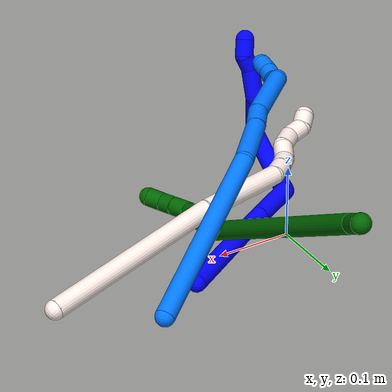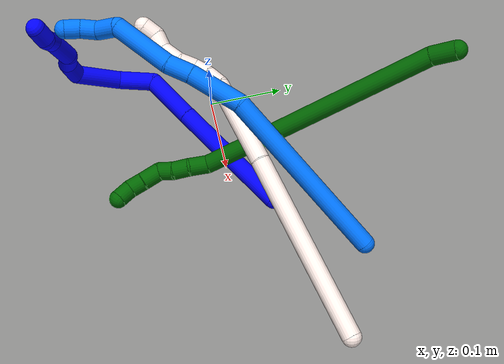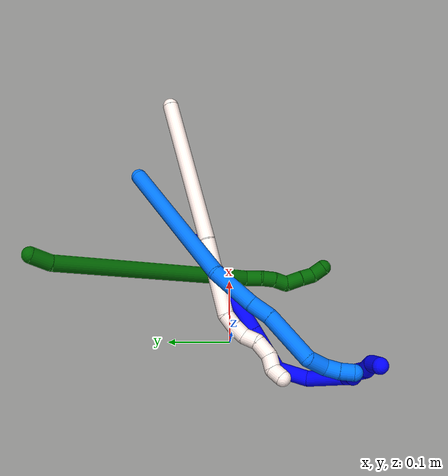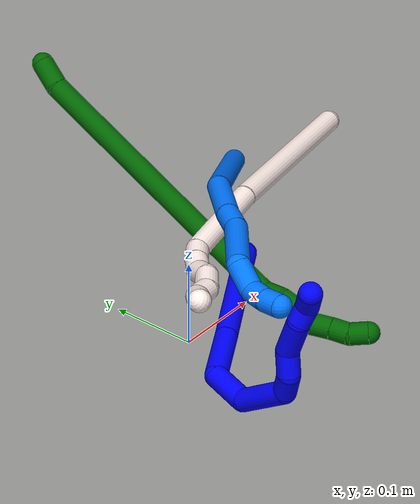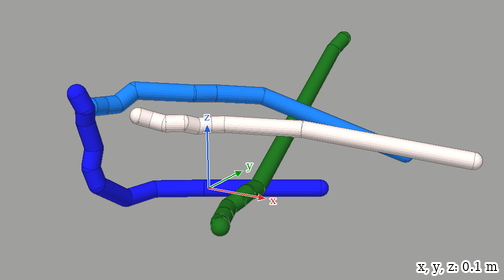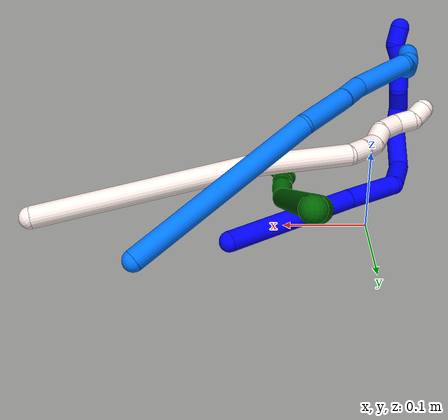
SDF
<sdf version="1.7">
 <world name="default">
  <model name="1">
   <static>0</static>
   <link name="1">
    <collision name="collision-cylinder-e_1_1_4">
     <pose>-0.065071 -0.043912 0.035939 0.884909 -0.853645 -0.424445</pose>
     <geometry><cylinder><radius>0.0125</radius><length>0.172674</length></cylinder></geometry>
     <surface>
      <friction><ode><mu>1.16</mu><mu2>1.16</mu2><slip1>0</slip1><slip2>0</slip2></ode></friction>
      <contact><ode><kp>1e+06</kp><kd>1</kd><max_vel>0</max_vel><min_depth>0.001</min_depth></ode></contact>
     </surface>
    </collision>
    <visual name="visual-cylinder-e_1_1_4">
     <pose>-0.065071 -0.043912 0.035939 0.884909 -0.853645 -0.424445</pose>
     <geometry><cylinder><radius>0.0125</radius><length>0.172674</length></cylinder></geometry>
     <material><ambient>0 0 1 1</ambient></material>
    </visual>
    <collision name="collision-cylinder-e_2_4_5">
     <pose>-0.158065 -0.10616 0.086165 0.90892 -0.876587 -0.450218</pose>
     <geometry><cylinder><radius>0.0125</radius><length>0.072666</length></cylinder></geometry>
     <surface>
      <friction><ode><mu>1.16</mu><mu2>1.16</mu2><slip1>0</slip1><slip2>0</slip2></ode></friction>
      <contact><ode><kp>1e+06</kp><kd>1</kd><max_vel>0</max_vel><min_depth>0.001</min_depth></ode></contact>
     </surface>
    </collision>
    <visual name="visual-cylinder-e_2_4_5">
     <pose>-0.158065 -0.10616 0.086165 0.90892 -0.876587 -0.450218</pose>
     <geometry><cylinder><radius>0.0125</radius><length>0.072666</length></cylinder></geometry>
     <material><ambient>0 0 1 1</ambient></material>
    </visual>
    <collision name="collision-cylinder-e_3_5_6">
     <pose>-0.190096 -0.14711 0.110109 1.16716 -0.165486 -0.109411</pose>
     <geometry><cylinder><radius>0.0125</radius><length>0.049859</length></cylinder></geometry>
     <surface>
      <friction><ode><mu>1.16</mu><mu2>1.16</mu2><slip1>0</slip1><slip2>0</slip2></ode></friction>
      <contact><ode><kp>1e+06</kp><kd>1</kd><max_vel>0</max_vel><min_depth>0.001</min_depth></ode></contact>
     </surface>
    </collision>
    <visual name="visual-cylinder-e_3_5_6">
     <pose>-0.190096 -0.14711 0.110109 1.16716 -0.165486 -0.109411</pose>
     <geometry><cylinder><radius>0.0125</radius><length>0.049859</length></cylinder></geometry>
     <material><ambient>0 0 1 1</ambient></material>
    </visual>
    <collision name="collision-cylinder-e_4_6_7">
     <pose>-0.187242 -0.188012 0.146076 0.607476 0.213919 0.067282</pose>
     <geometry><cylinder><radius>0.0125</radius><length>0.065577</length></cylinder></geometry>
     <surface>
      <friction><ode><mu>1.16</mu><mu2>1.16</mu2><slip1>0</slip1><slip2>0</slip2></ode></friction>
      <contact><ode><kp>1e+06</kp><kd>1</kd><max_vel>0</max_vel><min_depth>0.001</min_depth></ode></contact>
     </surface>
    </collision>
    <visual name="visual-cylinder-e_4_6_7">
     <pose>-0.187242 -0.188012 0.146076 0.607476 0.213919 0.067282</pose>
     <geometry><cylinder><radius>0.0125</radius><length>0.065577</length></cylinder></geometry>
     <material><ambient>0 0 1 1</ambient></material>
    </visual>
    <collision name="collision-cylinder-e_5_7_8">
     <pose>-0.178624 -0.204678 0.185979 -0.118835 0.120485 -0.007176</pose>
     <geometry><cylinder><radius>0.0125</radius><length>0.027582</length></cylinder></geometry>
     <surface>
      <friction><ode><mu>1.16</mu><mu2>1.16</mu2><slip1>0</slip1><slip2>0</slip2></ode></friction>
      <contact><ode><kp>1e+06</kp><kd>1</kd><max_vel>0</max_vel><min_depth>0.001</min_depth></ode></contact>
     </surface>
    </collision>
    <visual name="visual-cylinder-e_5_7_8">
     <pose>-0.178624 -0.204678 0.185979 -0.118835 0.120485 -0.007176</pose>
     <geometry><cylinder><radius>0.0125</radius><length>0.027582</length></cylinder></geometry>
     <material><ambient>0 0 1 1</ambient></material>
    </visual>
    <collision name="collision-cylinder-e_6_8_9">
     <pose>-0.172912 -0.195713 0.209962 -0.615234 0.308511 -0.098719</pose>
     <geometry><cylinder><radius>0.0125</radius><length>0.026703</length></cylinder></geometry>
     <surface>
      <friction><ode><mu>1.16</mu><mu2>1.16</mu2><slip1>0</slip1><slip2>0</slip2></ode></friction>
      <contact><ode><kp>1e+06</kp><kd>1</kd><max_vel>0</max_vel><min_depth>0.001</min_depth></ode></contact>
     </surface>
    </collision>
    <visual name="visual-cylinder-e_6_8_9">
     <pose>-0.172912 -0.195713 0.209962 -0.615234 0.308511 -0.098719</pose>
     <geometry><cylinder><radius>0.0125</radius><length>0.026703</length></cylinder></geometry>
     <material><ambient>0 0 1 1</ambient></material>
    </visual>
    <collision name="collision-cylinder-e_7_9_10">
     <pose>-0.163791 -0.18683 0.240585 -0.075981 0.244688 -0.009347</pose>
     <geometry><cylinder><radius>0.0125</radius><length>0.041834</length></cylinder></geometry>
     <surface>
      <friction><ode><mu>1.16</mu><mu2>1.16</mu2><slip1>0</slip1><slip2>0</slip2></ode></friction>
      <contact><ode><kp>1e+06</kp><kd>1</kd><max_vel>0</max_vel><min_depth>0.001</min_depth></ode></contact>
     </surface>
    </collision>
    <visual name="visual-cylinder-e_7_9_10">
     <pose>-0.163791 -0.18683 0.240585 -0.075981 0.244688 -0.009347</pose>
     <geometry><cylinder><radius>0.0125</radius><length>0.041834</length></cylinder></geometry>
     <material><ambient>0 0 1 1</ambient></material>
    </visual>
    <collision name="collision-cylinder-e_8_10_11">
     <pose>-0.153207 -0.184069 0.269203 -0.144642 0.577306 -0.043019</pose>
     <geometry><cylinder><radius>0.0125</radius><length>0.020218</length></cylinder></geometry>
     <surface>
      <friction><ode><mu>1.16</mu><mu2>1.16</mu2><slip1>0</slip1><slip2>0</slip2></ode></friction>
      <contact><ode><kp>1e+06</kp><kd>1</kd><max_vel>0</max_vel><min_depth>0.001</min_depth></ode></contact>
     </surface>
    </collision>
    <visual name="visual-cylinder-e_8_10_11">
     <pose>-0.153207 -0.184069 0.269203 -0.144642 0.577306 -0.043019</pose>
     <geometry><cylinder><radius>0.0125</radius><length>0.020218</length></cylinder></geometry>
     <material><ambient>0 0 1 1</ambient></material>
    </visual>
    <collision name="collision-cylinder-e_9_11_2">
     <pose>-0.147626 -0.182467 0.289022 -0.033286 0.00553 -9.2e-05</pose>
     <geometry><cylinder><radius>0.0125</radius><length>0.022888</length></cylinder></geometry>
     <surface>
      <friction><ode><mu>1.16</mu><mu2>1.16</mu2><slip1>0</slip1><slip2>0</slip2></ode></friction>
      <contact><ode><kp>1e+06</kp><kd>1</kd><max_vel>0</max_vel><min_depth>0.001</min_depth></ode></contact>
     </surface>
    </collision>
    <visual name="visual-cylinder-e_9_11_2">
     <pose>-0.147626 -0.182467 0.289022 -0.033286 0.00553 -9.2e-05</pose>
     <geometry><cylinder><radius>0.0125</radius><length>0.022888</length></cylinder></geometry>
     <material><ambient>0 0 1 1</ambient></material>
    </visual>
    <collision name="collision-sphere-2">
     <pose>-0.147563 -0.182086 0.30046 0 -0 0</pose>
     <geometry><sphere><radius>0.0125</radius></sphere></geometry>
     <surface>
      <friction><ode><mu>1.16</mu><mu2>1.16</mu2><slip1>0</slip1><slip2>0</slip2></ode></friction>
      <contact><ode><kp>1e+06</kp><kd>1</kd><max_vel>0</max_vel><min_depth>0.001</min_depth></ode></contact>
     </surface>
    </collision>
    <visual name="visual-sphere-2">
     <pose>-0.147563 -0.182086 0.30046 0 -0 0</pose>
     <geometry><sphere><radius>0.0125</radius></sphere></geometry>
     <material><ambient>0 0 1 1</ambient></material>
    </visual>
    <collision name="collision-sphere-11">
     <pose>-0.147689 -0.182848 0.277585 0 -0 0</pose>
     <geometry><sphere><radius>0.0125</radius></sphere></geometry>
     <surface>
      <friction><ode><mu>1.16</mu><mu2>1.16</mu2><slip1>0</slip1><slip2>0</slip2></ode></friction>
      <contact><ode><kp>1e+06</kp><kd>1</kd><max_vel>0</max_vel><min_depth>0.001</min_depth></ode></contact>
     </surface>
    </collision>
    <visual name="visual-sphere-11">
     <pose>-0.147689 -0.182848 0.277585 0 -0 0</pose>
     <geometry><sphere><radius>0.0125</radius></sphere></geometry>
     <material><ambient>0 0 1 1</ambient></material>
    </visual>
    <collision name="collision-sphere-10">
     <pose>-0.158724 -0.18529 0.260821 0 -0 0</pose>
     <geometry><sphere><radius>0.0125</radius></sphere></geometry>
     <surface>
      <friction><ode><mu>1.16</mu><mu2>1.16</mu2><slip1>0</slip1><slip2>0</slip2></ode></friction>
      <contact><ode><kp>1e+06</kp><kd>1</kd><max_vel>0</max_vel><min_depth>0.001</min_depth></ode></contact>
     </surface>
    </collision>
    <visual name="visual-sphere-10">
     <pose>-0.158724 -0.18529 0.260821 0 -0 0</pose>
     <geometry><sphere><radius>0.0125</radius></sphere></geometry>
     <material><ambient>0 0 1 1</ambient></material>
    </visual>
    <collision name="collision-sphere-9">
     <pose>-0.168858 -0.188371 0.22035 0 -0 0</pose>
     <geometry><sphere><radius>0.0125</radius></sphere></geometry>
     <surface>
      <friction><ode><mu>1.16</mu><mu2>1.16</mu2><slip1>0</slip1><slip2>0</slip2></ode></friction>
      <contact><ode><kp>1e+06</kp><kd>1</kd><max_vel>0</max_vel><min_depth>0.001</min_depth></ode></contact>
     </surface>
    </collision>
    <visual name="visual-sphere-9">
     <pose>-0.168858 -0.188371 0.22035 0 -0 0</pose>
     <geometry><sphere><radius>0.0125</radius></sphere></geometry>
     <material><ambient>0 0 1 1</ambient></material>
    </visual>
    <collision name="collision-sphere-4">
     <pose>-0.130141 -0.087824 0.071879 0 -0 0</pose>
     <geometry><sphere><radius>0.0125</radius></sphere></geometry>
     <surface>
      <friction><ode><mu>1.16</mu><mu2>1.16</mu2><slip1>0</slip1><slip2>0</slip2></ode></friction>
      <contact><ode><kp>1e+06</kp><kd>1</kd><max_vel>0</max_vel><min_depth>0.001</min_depth></ode></contact>
     </surface>
    </collision>
    <visual name="visual-sphere-4">
     <pose>-0.130141 -0.087824 0.071879 0 -0 0</pose>
     <geometry><sphere><radius>0.0125</radius></sphere></geometry>
     <material><ambient>0 0 1 1</ambient></material>
    </visual>
    <collision name="collision-sphere-1">
     <geometry><sphere><radius>0.0125</radius></sphere></geometry>
     <surface>
      <friction><ode><mu>1.16</mu><mu2>1.16</mu2><slip1>0</slip1><slip2>0</slip2></ode></friction>
      <contact><ode><kp>1e+06</kp><kd>1</kd><max_vel>0</max_vel><min_depth>0.001</min_depth></ode></contact>
     </surface>
    </collision>
    <visual name="visual-sphere-1">
     <geometry><sphere><radius>0.0125</radius></sphere></geometry>
     <material><ambient>0 0 1 1</ambient></material>
    </visual>
    <collision name="collision-sphere-8">
     <pose>-0.176966 -0.203055 0.199573 0 -0 0</pose>
     <geometry><sphere><radius>0.0125</radius></sphere></geometry>
     <surface>
      <friction><ode><mu>1.16</mu><mu2>1.16</mu2><slip1>0</slip1><slip2>0</slip2></ode></friction>
      <contact><ode><kp>1e+06</kp><kd>1</kd><max_vel>0</max_vel><min_depth>0.001</min_depth></ode></contact>
     </surface>
    </collision>
    <visual name="visual-sphere-8">
     <pose>-0.176966 -0.203055 0.199573 0 -0 0</pose>
     <geometry><sphere><radius>0.0125</radius></sphere></geometry>
     <material><ambient>0 0 1 1</ambient></material>
    </visual>
    <collision name="collision-sphere-5">
     <pose>-0.185989 -0.124497 0.100452 0 -0 0</pose>
     <geometry><sphere><radius>0.0125</radius></sphere></geometry>
     <surface>
      <friction><ode><mu>1.16</mu><mu2>1.16</mu2><slip1>0</slip1><slip2>0</slip2></ode></friction>
      <contact><ode><kp>1e+06</kp><kd>1</kd><max_vel>0</max_vel><min_depth>0.001</min_depth></ode></contact>
     </surface>
    </collision>
    <visual name="visual-sphere-5">
     <pose>-0.185989 -0.124497 0.100452 0 -0 0</pose>
     <geometry><sphere><radius>0.0125</radius></sphere></geometry>
     <material><ambient>0 0 1 1</ambient></material>
    </visual>
    <collision name="collision-sphere-6">
     <pose>-0.194203 -0.169723 0.119767 0 -0 0</pose>
     <geometry><sphere><radius>0.0125</radius></sphere></geometry>
     <surface>
      <friction><ode><mu>1.16</mu><mu2>1.16</mu2><slip1>0</slip1><slip2>0</slip2></ode></friction>
      <contact><ode><kp>1e+06</kp><kd>1</kd><max_vel>0</max_vel><min_depth>0.001</min_depth></ode></contact>
     </surface>
    </collision>
    <visual name="visual-sphere-6">
     <pose>-0.194203 -0.169723 0.119767 0 -0 0</pose>
     <geometry><sphere><radius>0.0125</radius></sphere></geometry>
     <material><ambient>0 0 1 1</ambient></material>
    </visual>
    <collision name="collision-sphere-7">
     <pose>-0.180281 -0.206301 0.172384 0 -0 0</pose>
     <geometry><sphere><radius>0.0125</radius></sphere></geometry>
     <surface>
      <friction><ode><mu>1.16</mu><mu2>1.16</mu2><slip1>0</slip1><slip2>0</slip2></ode></friction>
      <contact><ode><kp>1e+06</kp><kd>1</kd><max_vel>0</max_vel><min_depth>0.001</min_depth></ode></contact>
     </surface>
    </collision>
    <visual name="visual-sphere-7">
     <pose>-0.180281 -0.206301 0.172384 0 -0 0</pose>
     <geometry><sphere><radius>0.0125</radius></sphere></geometry>
     <material><ambient>0 0 1 1</ambient></material>
    </visual>
    <inertial>
     <pose>-0.134702 -0.123091 0.12079 0 -0 0</pose>
     <mass>0.5</mass>
     <inertia>
      <ixx>0.000195</ixx>
      <ixy>0</ixy>
      <ixz>0</ixz>
      <iyy>0.000285</iyy>
      <iyz>0</iyz>
      <izz>0.000634</izz>
     </inertia>
    </inertial>
   </link>
   <pose>0.165152 0.051519 0.011489 0.403933 -0.215258 -0.141239</pose>
  </model>
  <model name="6">
   <static>0</static>
   <link name="6">
    <collision name="collision-cylinder-e_1_1_4">
     <pose>0.001062 -0.010711 -0.01258 2.43628 0.064201 0.174058</pose>
     <geometry><cylinder><radius>0.0125</radius><length>0.033112</length></cylinder></geometry>
     <surface>
      <friction><ode><mu>1.16</mu><mu2>1.16</mu2><slip1>0</slip1><slip2>0</slip2></ode></friction>
      <contact><ode><kp>1e+06</kp><kd>1</kd><max_vel>0</max_vel><min_depth>0.001</min_depth></ode></contact>
     </surface>
    </collision>
    <visual name="visual-cylinder-e_1_1_4">
     <pose>0.001062 -0.010711 -0.01258 2.43628 0.064201 0.174058</pose>
     <geometry><cylinder><radius>0.0125</radius><length>0.033112</length></cylinder></geometry>
     <material><ambient>0 0.392157 0.003922 1</ambient></material>
    </visual>
    <collision name="collision-cylinder-e_2_4_5">
     <pose>0.006195 -0.158069 -0.117499 2.16506 0.024677 0.046452</pose>
     <geometry><cylinder><radius>0.0125</radius><length>0.329943</length></cylinder></geometry>
     <surface>
      <friction><ode><mu>1.16</mu><mu2>1.16</mu2><slip1>0</slip1><slip2>0</slip2></ode></friction>
      <contact><ode><kp>1e+06</kp><kd>1</kd><max_vel>0</max_vel><min_depth>0.001</min_depth></ode></contact>
     </surface>
    </collision>
    <visual name="visual-cylinder-e_2_4_5">
     <pose>0.006195 -0.158069 -0.117499 2.16506 0.024677 0.046452</pose>
     <geometry><cylinder><radius>0.0125</radius><length>0.329943</length></cylinder></geometry>
     <material><ambient>0 0.392157 0.003922 1</ambient></material>
    </visual>
    <collision name="collision-cylinder-e_3_5_6">
     <pose>0.00338 -0.303673 -0.216504 2.21063 -0.552597 -1.02783</pose>
     <geometry><cylinder><radius>0.0125</radius><length>0.026235</length></cylinder></geometry>
     <surface>
      <friction><ode><mu>1.16</mu><mu2>1.16</mu2><slip1>0</slip1><slip2>0</slip2></ode></friction>
      <contact><ode><kp>1e+06</kp><kd>1</kd><max_vel>0</max_vel><min_depth>0.001</min_depth></ode></contact>
     </surface>
    </collision>
    <visual name="visual-cylinder-e_3_5_6">
     <pose>0.00338 -0.303673 -0.216504 2.21063 -0.552597 -1.02783</pose>
     <geometry><cylinder><radius>0.0125</radius><length>0.026235</length></cylinder></geometry>
     <material><ambient>0 0.392157 0.003922 1</ambient></material>
    </visual>
    <collision name="collision-cylinder-e_4_6_7">
     <pose>-0.006515 -0.320677 -0.229771 2.25772 -0.281504 -0.581922</pose>
     <geometry><cylinder><radius>0.0125</radius><length>0.02167</length></cylinder></geometry>
     <surface>
      <friction><ode><mu>1.16</mu><mu2>1.16</mu2><slip1>0</slip1><slip2>0</slip2></ode></friction>
      <contact><ode><kp>1e+06</kp><kd>1</kd><max_vel>0</max_vel><min_depth>0.001</min_depth></ode></contact>
     </surface>
    </collision>
    <visual name="visual-cylinder-e_4_6_7">
     <pose>-0.006515 -0.320677 -0.229771 2.25772 -0.281504 -0.581922</pose>
     <geometry><cylinder><radius>0.0125</radius><length>0.02167</length></cylinder></geometry>
     <material><ambient>0 0.392157 0.003922 1</ambient></material>
    </visual>
    <collision name="collision-cylinder-e_5_7_8">
     <pose>-0.011614 -0.334892 -0.244416 2.48753 -0.203264 -0.584104</pose>
     <geometry><cylinder><radius>0.0125</radius><length>0.020699</length></cylinder></geometry>
     <surface>
      <friction><ode><mu>1.16</mu><mu2>1.16</mu2><slip1>0</slip1><slip2>0</slip2></ode></friction>
      <contact><ode><kp>1e+06</kp><kd>1</kd><max_vel>0</max_vel><min_depth>0.001</min_depth></ode></contact>
     </surface>
    </collision>
    <visual name="visual-cylinder-e_5_7_8">
     <pose>-0.011614 -0.334892 -0.244416 2.48753 -0.203264 -0.584104</pose>
     <geometry><cylinder><radius>0.0125</radius><length>0.020699</length></cylinder></geometry>
     <material><ambient>0 0.392157 0.003922 1</ambient></material>
    </visual>
    <collision name="collision-cylinder-e_6_8_9">
     <pose>-0.018688 -0.352943 -0.255348 1.80914 -0.387051 -0.488632</pose>
     <geometry><cylinder><radius>0.0125</radius><length>0.026412</length></cylinder></geometry>
     <surface>
      <friction><ode><mu>1.16</mu><mu2>1.16</mu2><slip1>0</slip1><slip2>0</slip2></ode></friction>
      <contact><ode><kp>1e+06</kp><kd>1</kd><max_vel>0</max_vel><min_depth>0.001</min_depth></ode></contact>
     </surface>
    </collision>
    <visual name="visual-cylinder-e_6_8_9">
     <pose>-0.018688 -0.352943 -0.255348 1.80914 -0.387051 -0.488632</pose>
     <geometry><cylinder><radius>0.0125</radius><length>0.026412</length></cylinder></geometry>
     <material><ambient>0 0.392157 0.003922 1</ambient></material>
    </visual>
    <collision name="collision-cylinder-e_7_9_10">
     <pose>-0.027168 -0.374052 -0.261073 1.86921 -0.347406 -0.466474</pose>
     <geometry><cylinder><radius>0.0125</radius><length>0.02053</length></cylinder></geometry>
     <surface>
      <friction><ode><mu>1.16</mu><mu2>1.16</mu2><slip1>0</slip1><slip2>0</slip2></ode></friction>
      <contact><ode><kp>1e+06</kp><kd>1</kd><max_vel>0</max_vel><min_depth>0.001</min_depth></ode></contact>
     </surface>
    </collision>
    <visual name="visual-cylinder-e_7_9_10">
     <pose>-0.027168 -0.374052 -0.261073 1.86921 -0.347406 -0.466474</pose>
     <geometry><cylinder><radius>0.0125</radius><length>0.02053</length></cylinder></geometry>
     <material><ambient>0 0.392157 0.003922 1</ambient></material>
    </visual>
    <collision name="collision-cylinder-e_8_10_2">
     <pose>-0.035869 -0.392591 -0.263128 1.48689 -0.50823 -0.468824</pose>
     <geometry><cylinder><radius>0.0125</radius><length>0.021398</length></cylinder></geometry>
     <surface>
      <friction><ode><mu>1.16</mu><mu2>1.16</mu2><slip1>0</slip1><slip2>0</slip2></ode></friction>
      <contact><ode><kp>1e+06</kp><kd>1</kd><max_vel>0</max_vel><min_depth>0.001</min_depth></ode></contact>
     </surface>
    </collision>
    <visual name="visual-cylinder-e_8_10_2">
     <pose>-0.035869 -0.392591 -0.263128 1.48689 -0.50823 -0.468824</pose>
     <geometry><cylinder><radius>0.0125</radius><length>0.021398</length></cylinder></geometry>
     <material><ambient>0 0.392157 0.003922 1</ambient></material>
    </visual>
    <collision name="collision-sphere-2">
     <pose>-0.041076 -0.401905 -0.262344 0 -0 0</pose>
     <geometry><sphere><radius>0.0125</radius></sphere></geometry>
     <surface>
      <friction><ode><mu>1.16</mu><mu2>1.16</mu2><slip1>0</slip1><slip2>0</slip2></ode></friction>
      <contact><ode><kp>1e+06</kp><kd>1</kd><max_vel>0</max_vel><min_depth>0.001</min_depth></ode></contact>
     </surface>
    </collision>
    <visual name="visual-sphere-2">
     <pose>-0.041076 -0.401905 -0.262344 0 -0 0</pose>
     <geometry><sphere><radius>0.0125</radius></sphere></geometry>
     <material><ambient>0 0.392157 0.003922 1</ambient></material>
    </visual>
    <collision name="collision-sphere-10">
     <pose>-0.030663 -0.383277 -0.263911 0 -0 0</pose>
     <geometry><sphere><radius>0.0125</radius></sphere></geometry>
     <surface>
      <friction><ode><mu>1.16</mu><mu2>1.16</mu2><slip1>0</slip1><slip2>0</slip2></ode></friction>
      <contact><ode><kp>1e+06</kp><kd>1</kd><max_vel>0</max_vel><min_depth>0.001</min_depth></ode></contact>
     </surface>
    </collision>
    <visual name="visual-sphere-10">
     <pose>-0.030663 -0.383277 -0.263911 0 -0 0</pose>
     <geometry><sphere><radius>0.0125</radius></sphere></geometry>
     <material><ambient>0 0.392157 0.003922 1</ambient></material>
    </visual>
    <collision name="collision-sphere-9">
     <pose>-0.023673 -0.364827 -0.258236 0 -0 0</pose>
     <geometry><sphere><radius>0.0125</radius></sphere></geometry>
     <surface>
      <friction><ode><mu>1.16</mu><mu2>1.16</mu2><slip1>0</slip1><slip2>0</slip2></ode></friction>
      <contact><ode><kp>1e+06</kp><kd>1</kd><max_vel>0</max_vel><min_depth>0.001</min_depth></ode></contact>
     </surface>
    </collision>
    <visual name="visual-sphere-9">
     <pose>-0.023673 -0.364827 -0.258236 0 -0 0</pose>
     <geometry><sphere><radius>0.0125</radius></sphere></geometry>
     <material><ambient>0 0.392157 0.003922 1</ambient></material>
    </visual>
    <collision name="collision-sphere-4">
     <pose>0.002124 -0.021422 -0.02516 0 -0 0</pose>
     <geometry><sphere><radius>0.0125</radius></sphere></geometry>
     <surface>
      <friction><ode><mu>1.16</mu><mu2>1.16</mu2><slip1>0</slip1><slip2>0</slip2></ode></friction>
      <contact><ode><kp>1e+06</kp><kd>1</kd><max_vel>0</max_vel><min_depth>0.001</min_depth></ode></contact>
     </surface>
    </collision>
    <visual name="visual-sphere-4">
     <pose>0.002124 -0.021422 -0.02516 0 -0 0</pose>
     <geometry><sphere><radius>0.0125</radius></sphere></geometry>
     <material><ambient>0 0.392157 0.003922 1</ambient></material>
    </visual>
    <collision name="collision-sphere-1">
     <geometry><sphere><radius>0.0125</radius></sphere></geometry>
     <surface>
      <friction><ode><mu>1.16</mu><mu2>1.16</mu2><slip1>0</slip1><slip2>0</slip2></ode></friction>
      <contact><ode><kp>1e+06</kp><kd>1</kd><max_vel>0</max_vel><min_depth>0.001</min_depth></ode></contact>
     </surface>
    </collision>
    <visual name="visual-sphere-1">
     <geometry><sphere><radius>0.0125</radius></sphere></geometry>
     <material><ambient>0 0.392157 0.003922 1</ambient></material>
    </visual>
    <collision name="collision-sphere-8">
     <pose>-0.013703 -0.34106 -0.252461 0 -0 0</pose>
     <geometry><sphere><radius>0.0125</radius></sphere></geometry>
     <surface>
      <friction><ode><mu>1.16</mu><mu2>1.16</mu2><slip1>0</slip1><slip2>0</slip2></ode></friction>
      <contact><ode><kp>1e+06</kp><kd>1</kd><max_vel>0</max_vel><min_depth>0.001</min_depth></ode></contact>
     </surface>
    </collision>
    <visual name="visual-sphere-8">
     <pose>-0.013703 -0.34106 -0.252461 0 -0 0</pose>
     <geometry><sphere><radius>0.0125</radius></sphere></geometry>
     <material><ambient>0 0.392157 0.003922 1</ambient></material>
    </visual>
    <collision name="collision-sphere-5">
     <pose>0.010266 -0.294716 -0.209838 0 -0 0</pose>
     <geometry><sphere><radius>0.0125</radius></sphere></geometry>
     <surface>
      <friction><ode><mu>1.16</mu><mu2>1.16</mu2><slip1>0</slip1><slip2>0</slip2></ode></friction>
      <contact><ode><kp>1e+06</kp><kd>1</kd><max_vel>0</max_vel><min_depth>0.001</min_depth></ode></contact>
     </surface>
    </collision>
    <visual name="visual-sphere-5">
     <pose>0.010266 -0.294716 -0.209838 0 -0 0</pose>
     <geometry><sphere><radius>0.0125</radius></sphere></geometry>
     <material><ambient>0 0.392157 0.003922 1</ambient></material>
    </visual>
    <collision name="collision-sphere-6">
     <pose>-0.003505 -0.31263 -0.22317 0 -0 0</pose>
     <geometry><sphere><radius>0.0125</radius></sphere></geometry>
     <surface>
      <friction><ode><mu>1.16</mu><mu2>1.16</mu2><slip1>0</slip1><slip2>0</slip2></ode></friction>
      <contact><ode><kp>1e+06</kp><kd>1</kd><max_vel>0</max_vel><min_depth>0.001</min_depth></ode></contact>
     </surface>
    </collision>
    <visual name="visual-sphere-6">
     <pose>-0.003505 -0.31263 -0.22317 0 -0 0</pose>
     <geometry><sphere><radius>0.0125</radius></sphere></geometry>
     <material><ambient>0 0.392157 0.003922 1</ambient></material>
    </visual>
    <collision name="collision-sphere-7">
     <pose>-0.009525 -0.328725 -0.236372 0 -0 0</pose>
     <geometry><sphere><radius>0.0125</radius></sphere></geometry>
     <surface>
      <friction><ode><mu>1.16</mu><mu2>1.16</mu2><slip1>0</slip1><slip2>0</slip2></ode></friction>
      <contact><ode><kp>1e+06</kp><kd>1</kd><max_vel>0</max_vel><min_depth>0.001</min_depth></ode></contact>
     </surface>
    </collision>
    <visual name="visual-sphere-7">
     <pose>-0.009525 -0.328725 -0.236372 0 -0 0</pose>
     <geometry><sphere><radius>0.0125</radius></sphere></geometry>
     <material><ambient>0 0.392157 0.003922 1</ambient></material>
    </visual>
    <inertial>
     <pose>-6.5e-05 -0.199517 -0.145275 0 -0 0</pose>
     <mass>0.5</mass>
     <inertia>
      <ixx>0.003146</ixx>
      <ixy>0</ixy>
      <ixz>0</ixz>
      <iyy>-0.00158</iyy>
      <iyz>0</iyz>
      <izz>0.002411</izz>
     </inertia>
    </inertial>
   </link>
   <pose>0.095545 0.289201 0.203927 0.886049 1.07792 1.50939</pose>
  </model>
  <model name="11">
   <static>0</static>
   <link name="11">
    <collision name="collision-cylinder-e_1_1_4">
     <pose>-0.069135 -0.024702 -0.098341 2.8955 -0.598426 -2.37901</pose>
     <geometry><cylinder><radius>0.0125</radius><length>0.245445</length></cylinder></geometry>
     <surface>
      <friction><ode><mu>1.16</mu><mu2>1.16</mu2><slip1>0</slip1><slip2>0</slip2></ode></friction>
      <contact><ode><kp>1e+06</kp><kd>1</kd><max_vel>0</max_vel><min_depth>0.001</min_depth></ode></contact>
     </surface>
    </collision>
    <visual name="visual-cylinder-e_1_1_4">
     <pose>-0.069135 -0.024702 -0.098341 2.8955 -0.598426 -2.37901</pose>
     <geometry><cylinder><radius>0.0125</radius><length>0.245445</length></cylinder></geometry>
     <material><ambient>1 0.933333 0.909804 1</ambient></material>
    </visual>
    <collision name="collision-cylinder-e_2_4_5">
     <pose>-0.1752 -0.066964 -0.240547 2.76079 -0.663427 -2.12129</pose>
     <geometry><cylinder><radius>0.0125</radius><length>0.119939</length></cylinder></geometry>
     <surface>
      <friction><ode><mu>1.16</mu><mu2>1.16</mu2><slip1>0</slip1><slip2>0</slip2></ode></friction>
      <contact><ode><kp>1e+06</kp><kd>1</kd><max_vel>0</max_vel><min_depth>0.001</min_depth></ode></contact>
     </surface>
    </collision>
    <visual name="visual-cylinder-e_2_4_5">
     <pose>-0.1752 -0.066964 -0.240547 2.76079 -0.663427 -2.12129</pose>
     <geometry><cylinder><radius>0.0125</radius><length>0.119939</length></cylinder></geometry>
     <material><ambient>1 0.933333 0.909804 1</ambient></material>
    </visual>
    <collision name="collision-cylinder-e_3_5_6">
     <pose>-0.220931 -0.084392 -0.290674 -3.12051 -0.952174 3.10071</pose>
     <geometry><cylinder><radius>0.0125</radius><length>0.021605</length></cylinder></geometry>
     <surface>
      <friction><ode><mu>1.16</mu><mu2>1.16</mu2><slip1>0</slip1><slip2>0</slip2></ode></friction>
      <contact><ode><kp>1e+06</kp><kd>1</kd><max_vel>0</max_vel><min_depth>0.001</min_depth></ode></contact>
     </surface>
    </collision>
    <visual name="visual-cylinder-e_3_5_6">
     <pose>-0.220931 -0.084392 -0.290674 -3.12051 -0.952174 3.10071</pose>
     <geometry><cylinder><radius>0.0125</radius><length>0.021605</length></cylinder></geometry>
     <material><ambient>1 0.933333 0.909804 1</ambient></material>
    </visual>
    <collision name="collision-cylinder-e_4_6_7">
     <pose>-0.23899 -0.083231 -0.301692 -2.92842 -1.08706 2.79109</pose>
     <geometry><cylinder><radius>0.0125</radius><length>0.020917</length></cylinder></geometry>
     <surface>
      <friction><ode><mu>1.16</mu><mu2>1.16</mu2><slip1>0</slip1><slip2>0</slip2></ode></friction>
      <contact><ode><kp>1e+06</kp><kd>1</kd><max_vel>0</max_vel><min_depth>0.001</min_depth></ode></contact>
     </surface>
    </collision>
    <visual name="visual-cylinder-e_4_6_7">
     <pose>-0.23899 -0.083231 -0.301692 -2.92842 -1.08706 2.79109</pose>
     <geometry><cylinder><radius>0.0125</radius><length>0.020917</length></cylinder></geometry>
     <material><ambient>1 0.933333 0.909804 1</ambient></material>
    </visual>
    <collision name="collision-cylinder-e_5_7_8">
     <pose>-0.256269 -0.076041 -0.311664 -2.27356 -0.782124 1.45402</pose>
     <geometry><cylinder><radius>0.0125</radius><length>0.022762</length></cylinder></geometry>
     <surface>
      <friction><ode><mu>1.16</mu><mu2>1.16</mu2><slip1>0</slip1><slip2>0</slip2></ode></friction>
      <contact><ode><kp>1e+06</kp><kd>1</kd><max_vel>0</max_vel><min_depth>0.001</min_depth></ode></contact>
     </surface>
    </collision>
    <visual name="visual-cylinder-e_5_7_8">
     <pose>-0.256269 -0.076041 -0.311664 -2.27356 -0.782124 1.45402</pose>
     <geometry><cylinder><radius>0.0125</radius><length>0.022762</length></cylinder></geometry>
     <material><ambient>1 0.933333 0.909804 1</ambient></material>
    </visual>
    <collision name="collision-cylinder-e_6_8_9">
     <pose>-0.275498 -0.069033 -0.324508 -3.03087 -0.970489 2.93216</pose>
     <geometry><cylinder><radius>0.0125</radius><length>0.027165</length></cylinder></geometry>
     <surface>
      <friction><ode><mu>1.16</mu><mu2>1.16</mu2><slip1>0</slip1><slip2>0</slip2></ode></friction>
      <contact><ode><kp>1e+06</kp><kd>1</kd><max_vel>0</max_vel><min_depth>0.001</min_depth></ode></contact>
     </surface>
    </collision>
    <visual name="visual-cylinder-e_6_8_9">
     <pose>-0.275498 -0.069033 -0.324508 -3.03087 -0.970489 2.93216</pose>
     <geometry><cylinder><radius>0.0125</radius><length>0.027165</length></cylinder></geometry>
     <material><ambient>1 0.933333 0.909804 1</ambient></material>
    </visual>
    <collision name="collision-cylinder-e_7_9_10">
     <pose>-0.292374 -0.070155 -0.34143 2.9327 -0.537839 -2.41466</pose>
     <geometry><cylinder><radius>0.0125</radius><length>0.022129</length></cylinder></geometry>
     <surface>
      <friction><ode><mu>1.16</mu><mu2>1.16</mu2><slip1>0</slip1><slip2>0</slip2></ode></friction>
      <contact><ode><kp>1e+06</kp><kd>1</kd><max_vel>0</max_vel><min_depth>0.001</min_depth></ode></contact>
     </surface>
    </collision>
    <visual name="visual-cylinder-e_7_9_10">
     <pose>-0.292374 -0.070155 -0.34143 2.9327 -0.537839 -2.41466</pose>
     <geometry><cylinder><radius>0.0125</radius><length>0.022129</length></cylinder></geometry>
     <material><ambient>1 0.933333 0.909804 1</ambient></material>
    </visual>
    <collision name="collision-cylinder-e_8_10_2">
     <pose>-0.304652 -0.068635 -0.357397 -2.65944 -0.720479 1.98505</pose>
     <geometry><cylinder><radius>0.0125</radius><length>0.020039</length></cylinder></geometry>
     <surface>
      <friction><ode><mu>1.16</mu><mu2>1.16</mu2><slip1>0</slip1><slip2>0</slip2></ode></friction>
      <contact><ode><kp>1e+06</kp><kd>1</kd><max_vel>0</max_vel><min_depth>0.001</min_depth></ode></contact>
     </surface>
    </collision>
    <visual name="visual-cylinder-e_8_10_2">
     <pose>-0.304652 -0.068635 -0.357397 -2.65944 -0.720479 1.98505</pose>
     <geometry><cylinder><radius>0.0125</radius><length>0.020039</length></cylinder></geometry>
     <material><ambient>1 0.933333 0.909804 1</ambient></material>
    </visual>
    <collision name="collision-sphere-2">
     <pose>-0.311263 -0.065143 -0.364068 0 -0 0</pose>
     <geometry><sphere><radius>0.0125</radius></sphere></geometry>
     <surface>
      <friction><ode><mu>1.16</mu><mu2>1.16</mu2><slip1>0</slip1><slip2>0</slip2></ode></friction>
      <contact><ode><kp>1e+06</kp><kd>1</kd><max_vel>0</max_vel><min_depth>0.001</min_depth></ode></contact>
     </surface>
    </collision>
    <visual name="visual-sphere-2">
     <pose>-0.311263 -0.065143 -0.364068 0 -0 0</pose>
     <geometry><sphere><radius>0.0125</radius></sphere></geometry>
     <material><ambient>1 0.933333 0.909804 1</ambient></material>
    </visual>
    <collision name="collision-sphere-10">
     <pose>-0.298042 -0.072126 -0.350726 0 -0 0</pose>
     <geometry><sphere><radius>0.0125</radius></sphere></geometry>
     <surface>
      <friction><ode><mu>1.16</mu><mu2>1.16</mu2><slip1>0</slip1><slip2>0</slip2></ode></friction>
      <contact><ode><kp>1e+06</kp><kd>1</kd><max_vel>0</max_vel><min_depth>0.001</min_depth></ode></contact>
     </surface>
    </collision>
    <visual name="visual-sphere-10">
     <pose>-0.298042 -0.072126 -0.350726 0 -0 0</pose>
     <geometry><sphere><radius>0.0125</radius></sphere></geometry>
     <material><ambient>1 0.933333 0.909804 1</ambient></material>
    </visual>
    <collision name="collision-sphere-9">
     <pose>-0.286706 -0.068185 -0.332134 0 -0 0</pose>
     <geometry><sphere><radius>0.0125</radius></sphere></geometry>
     <surface>
      <friction><ode><mu>1.16</mu><mu2>1.16</mu2><slip1>0</slip1><slip2>0</slip2></ode></friction>
      <contact><ode><kp>1e+06</kp><kd>1</kd><max_vel>0</max_vel><min_depth>0.001</min_depth></ode></contact>
     </surface>
    </collision>
    <visual name="visual-sphere-9">
     <pose>-0.286706 -0.068185 -0.332134 0 -0 0</pose>
     <geometry><sphere><radius>0.0125</radius></sphere></geometry>
     <material><ambient>1 0.933333 0.909804 1</ambient></material>
    </visual>
    <collision name="collision-sphere-4">
     <pose>-0.138269 -0.049403 -0.196682 0 -0 0</pose>
     <geometry><sphere><radius>0.0125</radius></sphere></geometry>
     <surface>
      <friction><ode><mu>1.16</mu><mu2>1.16</mu2><slip1>0</slip1><slip2>0</slip2></ode></friction>
      <contact><ode><kp>1e+06</kp><kd>1</kd><max_vel>0</max_vel><min_depth>0.001</min_depth></ode></contact>
     </surface>
    </collision>
    <visual name="visual-sphere-4">
     <pose>-0.138269 -0.049403 -0.196682 0 -0 0</pose>
     <geometry><sphere><radius>0.0125</radius></sphere></geometry>
     <material><ambient>1 0.933333 0.909804 1</ambient></material>
    </visual>
    <collision name="collision-sphere-1">
     <geometry><sphere><radius>0.0125</radius></sphere></geometry>
     <surface>
      <friction><ode><mu>1.16</mu><mu2>1.16</mu2><slip1>0</slip1><slip2>0</slip2></ode></friction>
      <contact><ode><kp>1e+06</kp><kd>1</kd><max_vel>0</max_vel><min_depth>0.001</min_depth></ode></contact>
     </surface>
    </collision>
    <visual name="visual-sphere-1">
     <geometry><sphere><radius>0.0125</radius></sphere></geometry>
     <material><ambient>1 0.933333 0.909804 1</ambient></material>
    </visual>
    <collision name="collision-sphere-8">
     <pose>-0.26429 -0.06988 -0.316883 0 -0 0</pose>
     <geometry><sphere><radius>0.0125</radius></sphere></geometry>
     <surface>
      <friction><ode><mu>1.16</mu><mu2>1.16</mu2><slip1>0</slip1><slip2>0</slip2></ode></friction>
      <contact><ode><kp>1e+06</kp><kd>1</kd><max_vel>0</max_vel><min_depth>0.001</min_depth></ode></contact>
     </surface>
    </collision>
    <visual name="visual-sphere-8">
     <pose>-0.26429 -0.06988 -0.316883 0 -0 0</pose>
     <geometry><sphere><radius>0.0125</radius></sphere></geometry>
     <material><ambient>1 0.933333 0.909804 1</ambient></material>
    </visual>
    <collision name="collision-sphere-5">
     <pose>-0.21213 -0.084524 -0.284411 0 -0 0</pose>
     <geometry><sphere><radius>0.0125</radius></sphere></geometry>
     <surface>
      <friction><ode><mu>1.16</mu><mu2>1.16</mu2><slip1>0</slip1><slip2>0</slip2></ode></friction>
      <contact><ode><kp>1e+06</kp><kd>1</kd><max_vel>0</max_vel><min_depth>0.001</min_depth></ode></contact>
     </surface>
    </collision>
    <visual name="visual-sphere-5">
     <pose>-0.21213 -0.084524 -0.284411 0 -0 0</pose>
     <geometry><sphere><radius>0.0125</radius></sphere></geometry>
     <material><ambient>1 0.933333 0.909804 1</ambient></material>
    </visual>
    <collision name="collision-sphere-6">
     <pose>-0.229731 -0.08426 -0.296938 0 -0 0</pose>
     <geometry><sphere><radius>0.0125</radius></sphere></geometry>
     <surface>
      <friction><ode><mu>1.16</mu><mu2>1.16</mu2><slip1>0</slip1><slip2>0</slip2></ode></friction>
      <contact><ode><kp>1e+06</kp><kd>1</kd><max_vel>0</max_vel><min_depth>0.001</min_depth></ode></contact>
     </surface>
    </collision>
    <visual name="visual-sphere-6">
     <pose>-0.229731 -0.08426 -0.296938 0 -0 0</pose>
     <geometry><sphere><radius>0.0125</radius></sphere></geometry>
     <material><ambient>1 0.933333 0.909804 1</ambient></material>
    </visual>
    <collision name="collision-sphere-7">
     <pose>-0.248248 -0.082202 -0.306446 0 -0 0</pose>
     <geometry><sphere><radius>0.0125</radius></sphere></geometry>
     <surface>
      <friction><ode><mu>1.16</mu><mu2>1.16</mu2><slip1>0</slip1><slip2>0</slip2></ode></friction>
      <contact><ode><kp>1e+06</kp><kd>1</kd><max_vel>0</max_vel><min_depth>0.001</min_depth></ode></contact>
     </surface>
    </collision>
    <visual name="visual-sphere-7">
     <pose>-0.248248 -0.082202 -0.306446 0 -0 0</pose>
     <geometry><sphere><radius>0.0125</radius></sphere></geometry>
     <material><ambient>1 0.933333 0.909804 1</ambient></material>
    </visual>
    <inertial>
     <pose>-0.147292 -0.048385 -0.192411 0 -0 0</pose>
     <mass>0.5</mass>
     <inertia>
      <ixx>-0.001638</ixx>
      <ixy>0</ixy>
      <ixz>0</ixz>
      <iyy>0.000287</iyy>
      <iyz>0</iyz>
      <izz>0.001063</izz>
     </inertia>
    </inertial>
   </link>
   <pose>0.379302 0.095126 0.072766 2.34114 -0.454712 1.04758</pose>
  </model>
  <model name="14">
   <static>0</static>
   <link name="14">
    <collision name="collision-cylinder-e_1_1_4">
     <pose>-0.05259 -0.107305 -0.009173 1.65608 -0.454259 -0.493191</pose>
     <geometry><cylinder><radius>0.0125</radius><length>0.239703</length></cylinder></geometry>
     <surface>
      <friction><ode><mu>1.16</mu><mu2>1.16</mu2><slip1>0</slip1><slip2>0</slip2></ode></friction>
      <contact><ode><kp>1e+06</kp><kd>1</kd><max_vel>0</max_vel><min_depth>0.001</min_depth></ode></contact>
     </surface>
    </collision>
    <visual name="visual-cylinder-e_1_1_4">
     <pose>-0.05259 -0.107305 -0.009173 1.65608 -0.454259 -0.493191</pose>
     <geometry><cylinder><radius>0.0125</radius><length>0.239703</length></cylinder></geometry>
     <material><ambient>0 0.462745 1 1</ambient></material>
    </visual>
    <collision name="collision-cylinder-e_2_4_5">
     <pose>-0.129072 -0.239409 -0.028015 1.94254 -0.731502 -1.02155</pose>
     <geometry><cylinder><radius>0.0125</radius><length>0.071532</length></cylinder></geometry>
     <surface>
      <friction><ode><mu>1.16</mu><mu2>1.16</mu2><slip1>0</slip1><slip2>0</slip2></ode></friction>
      <contact><ode><kp>1e+06</kp><kd>1</kd><max_vel>0</max_vel><min_depth>0.001</min_depth></ode></contact>
     </surface>
    </collision>
    <visual name="visual-cylinder-e_2_4_5">
     <pose>-0.129072 -0.239409 -0.028015 1.94254 -0.731502 -1.02155</pose>
     <geometry><cylinder><radius>0.0125</radius><length>0.071532</length></cylinder></geometry>
     <material><ambient>0 0.462745 1 1</ambient></material>
    </visual>
    <collision name="collision-cylinder-e_3_5_6">
     <pose>-0.163926 -0.274557 -0.043899 2.11162 -0.737233 -1.19783</pose>
     <geometry><cylinder><radius>0.0125</radius><length>0.032615</length></cylinder></geometry>
     <surface>
      <friction><ode><mu>1.16</mu><mu2>1.16</mu2><slip1>0</slip1><slip2>0</slip2></ode></friction>
      <contact><ode><kp>1e+06</kp><kd>1</kd><max_vel>0</max_vel><min_depth>0.001</min_depth></ode></contact>
     </surface>
    </collision>
    <visual name="visual-cylinder-e_3_5_6">
     <pose>-0.163926 -0.274557 -0.043899 2.11162 -0.737233 -1.19783</pose>
     <geometry><cylinder><radius>0.0125</radius><length>0.032615</length></cylinder></geometry>
     <material><ambient>0 0.462745 1 1</ambient></material>
    </visual>
    <collision name="collision-cylinder-e_4_6_7">
     <pose>-0.203329 -0.313302 -0.056503 1.79211 -0.773858 -0.942177</pose>
     <geometry><cylinder><radius>0.0125</radius><length>0.081386</length></cylinder></geometry>
     <surface>
      <friction><ode><mu>1.16</mu><mu2>1.16</mu2><slip1>0</slip1><slip2>0</slip2></ode></friction>
      <contact><ode><kp>1e+06</kp><kd>1</kd><max_vel>0</max_vel><min_depth>0.001</min_depth></ode></contact>
     </surface>
    </collision>
    <visual name="visual-cylinder-e_4_6_7">
     <pose>-0.203329 -0.313302 -0.056503 1.79211 -0.773858 -0.942177</pose>
     <geometry><cylinder><radius>0.0125</radius><length>0.081386</length></cylinder></geometry>
     <material><ambient>0 0.462745 1 1</ambient></material>
    </visual>
    <collision name="collision-cylinder-e_5_7_8">
     <pose>-0.245636 -0.342306 -0.070409 3.06074 -1.07265 -3.00572</pose>
     <geometry><cylinder><radius>0.0125</radius><length>0.03157</length></cylinder></geometry>
     <surface>
      <friction><ode><mu>1.16</mu><mu2>1.16</mu2><slip1>0</slip1><slip2>0</slip2></ode></friction>
      <contact><ode><kp>1e+06</kp><kd>1</kd><max_vel>0</max_vel><min_depth>0.001</min_depth></ode></contact>
     </surface>
    </collision>
    <visual name="visual-cylinder-e_5_7_8">
     <pose>-0.245636 -0.342306 -0.070409 3.06074 -1.07265 -3.00572</pose>
     <geometry><cylinder><radius>0.0125</radius><length>0.03157</length></cylinder></geometry>
     <material><ambient>0 0.462745 1 1</ambient></material>
    </visual>
    <collision name="collision-cylinder-e_6_8_9">
     <pose>-0.265803 -0.348356 -0.085509 2.5191 -0.593815 -1.52061</pose>
     <geometry><cylinder><radius>0.0125</radius><length>0.022521</length></cylinder></geometry>
     <surface>
      <friction><ode><mu>1.16</mu><mu2>1.16</mu2><slip1>0</slip1><slip2>0</slip2></ode></friction>
      <contact><ode><kp>1e+06</kp><kd>1</kd><max_vel>0</max_vel><min_depth>0.001</min_depth></ode></contact>
     </surface>
    </collision>
    <visual name="visual-cylinder-e_6_8_9">
     <pose>-0.265803 -0.348356 -0.085509 2.5191 -0.593815 -1.52061</pose>
     <geometry><cylinder><radius>0.0125</radius><length>0.022521</length></cylinder></geometry>
     <material><ambient>0 0.462745 1 1</ambient></material>
    </visual>
    <collision name="collision-cylinder-e_7_9_2">
     <pose>-0.276655 -0.358126 -0.1013 2.65638 -0.455936 -1.50625</pose>
     <geometry><cylinder><radius>0.0125</radius><length>0.020673</length></cylinder></geometry>
     <surface>
      <friction><ode><mu>1.16</mu><mu2>1.16</mu2><slip1>0</slip1><slip2>0</slip2></ode></friction>
      <contact><ode><kp>1e+06</kp><kd>1</kd><max_vel>0</max_vel><min_depth>0.001</min_depth></ode></contact>
     </surface>
    </collision>
    <visual name="visual-cylinder-e_7_9_2">
     <pose>-0.276655 -0.358126 -0.1013 2.65638 -0.455936 -1.50625</pose>
     <geometry><cylinder><radius>0.0125</radius><length>0.020673</length></cylinder></geometry>
     <material><ambient>0 0.462745 1 1</ambient></material>
    </visual>
    <collision name="collision-sphere-2">
     <pose>-0.281206 -0.362455 -0.10951 0 -0 0</pose>
     <geometry><sphere><radius>0.0125</radius></sphere></geometry>
     <surface>
      <friction><ode><mu>1.16</mu><mu2>1.16</mu2><slip1>0</slip1><slip2>0</slip2></ode></friction>
      <contact><ode><kp>1e+06</kp><kd>1</kd><max_vel>0</max_vel><min_depth>0.001</min_depth></ode></contact>
     </surface>
    </collision>
    <visual name="visual-sphere-2">
     <pose>-0.281206 -0.362455 -0.10951 0 -0 0</pose>
     <geometry><sphere><radius>0.0125</radius></sphere></geometry>
     <material><ambient>0 0.462745 1 1</ambient></material>
    </visual>
    <collision name="collision-sphere-9">
     <pose>-0.272104 -0.353798 -0.093091 0 -0 0</pose>
     <geometry><sphere><radius>0.0125</radius></sphere></geometry>
     <surface>
      <friction><ode><mu>1.16</mu><mu2>1.16</mu2><slip1>0</slip1><slip2>0</slip2></ode></friction>
      <contact><ode><kp>1e+06</kp><kd>1</kd><max_vel>0</max_vel><min_depth>0.001</min_depth></ode></contact>
     </surface>
    </collision>
    <visual name="visual-sphere-9">
     <pose>-0.272104 -0.353798 -0.093091 0 -0 0</pose>
     <geometry><sphere><radius>0.0125</radius></sphere></geometry>
     <material><ambient>0 0.462745 1 1</ambient></material>
    </visual>
    <collision name="collision-sphere-4">
     <pose>-0.105181 -0.214611 -0.018347 0 -0 0</pose>
     <geometry><sphere><radius>0.0125</radius></sphere></geometry>
     <surface>
      <friction><ode><mu>1.16</mu><mu2>1.16</mu2><slip1>0</slip1><slip2>0</slip2></ode></friction>
      <contact><ode><kp>1e+06</kp><kd>1</kd><max_vel>0</max_vel><min_depth>0.001</min_depth></ode></contact>
     </surface>
    </collision>
    <visual name="visual-sphere-4">
     <pose>-0.105181 -0.214611 -0.018347 0 -0 0</pose>
     <geometry><sphere><radius>0.0125</radius></sphere></geometry>
     <material><ambient>0 0.462745 1 1</ambient></material>
    </visual>
    <collision name="collision-sphere-1">
     <geometry><sphere><radius>0.0125</radius></sphere></geometry>
     <surface>
      <friction><ode><mu>1.16</mu><mu2>1.16</mu2><slip1>0</slip1><slip2>0</slip2></ode></friction>
      <contact><ode><kp>1e+06</kp><kd>1</kd><max_vel>0</max_vel><min_depth>0.001</min_depth></ode></contact>
     </surface>
    </collision>
    <visual name="visual-sphere-1">
     <geometry><sphere><radius>0.0125</radius></sphere></geometry>
     <material><ambient>0 0.462745 1 1</ambient></material>
    </visual>
    <collision name="collision-sphere-8">
     <pose>-0.259503 -0.342915 -0.077927 0 -0 0</pose>
     <geometry><sphere><radius>0.0125</radius></sphere></geometry>
     <surface>
      <friction><ode><mu>1.16</mu><mu2>1.16</mu2><slip1>0</slip1><slip2>0</slip2></ode></friction>
      <contact><ode><kp>1e+06</kp><kd>1</kd><max_vel>0</max_vel><min_depth>0.001</min_depth></ode></contact>
     </surface>
    </collision>
    <visual name="visual-sphere-8">
     <pose>-0.259503 -0.342915 -0.077927 0 -0 0</pose>
     <geometry><sphere><radius>0.0125</radius></sphere></geometry>
     <material><ambient>0 0.462745 1 1</ambient></material>
    </visual>
    <collision name="collision-sphere-5">
     <pose>-0.152963 -0.264207 -0.037683 0 -0 0</pose>
     <geometry><sphere><radius>0.0125</radius></sphere></geometry>
     <surface>
      <friction><ode><mu>1.16</mu><mu2>1.16</mu2><slip1>0</slip1><slip2>0</slip2></ode></friction>
      <contact><ode><kp>1e+06</kp><kd>1</kd><max_vel>0</max_vel><min_depth>0.001</min_depth></ode></contact>
     </surface>
    </collision>
    <visual name="visual-sphere-5">
     <pose>-0.152963 -0.264207 -0.037683 0 -0 0</pose>
     <geometry><sphere><radius>0.0125</radius></sphere></geometry>
     <material><ambient>0 0.462745 1 1</ambient></material>
    </visual>
    <collision name="collision-sphere-6">
     <pose>-0.174889 -0.284907 -0.050114 0 -0 0</pose>
     <geometry><sphere><radius>0.0125</radius></sphere></geometry>
     <surface>
      <friction><ode><mu>1.16</mu><mu2>1.16</mu2><slip1>0</slip1><slip2>0</slip2></ode></friction>
      <contact><ode><kp>1e+06</kp><kd>1</kd><max_vel>0</max_vel><min_depth>0.001</min_depth></ode></contact>
     </surface>
    </collision>
    <visual name="visual-sphere-6">
     <pose>-0.174889 -0.284907 -0.050114 0 -0 0</pose>
     <geometry><sphere><radius>0.0125</radius></sphere></geometry>
     <material><ambient>0 0.462745 1 1</ambient></material>
    </visual>
    <collision name="collision-sphere-7">
     <pose>-0.23177 -0.341697 -0.062892 0 -0 0</pose>
     <geometry><sphere><radius>0.0125</radius></sphere></geometry>
     <surface>
      <friction><ode><mu>1.16</mu><mu2>1.16</mu2><slip1>0</slip1><slip2>0</slip2></ode></friction>
      <contact><ode><kp>1e+06</kp><kd>1</kd><max_vel>0</max_vel><min_depth>0.001</min_depth></ode></contact>
     </surface>
    </collision>
    <visual name="visual-sphere-7">
     <pose>-0.23177 -0.341697 -0.062892 0 -0 0</pose>
     <geometry><sphere><radius>0.0125</radius></sphere></geometry>
     <material><ambient>0 0.462745 1 1</ambient></material>
    </visual>
    <inertial>
     <pose>-0.126387 -0.206711 -0.032952 0 -0 0</pose>
     <mass>0.5</mass>
     <inertia>
      <ixx>0.000379</ixx>
      <ixy>0</ixy>
      <ixz>0</ixz>
      <iyy>-0.000385</iyy>
      <iyz>0</iyz>
      <izz>0.00166</izz>
     </inertia>
    </inertial>
   </link>
   <pose>0.263778 0.14659 0.052782 -1.68858 -0.702563 0.622039</pose>
  </model>
 </world>
</sdf>
